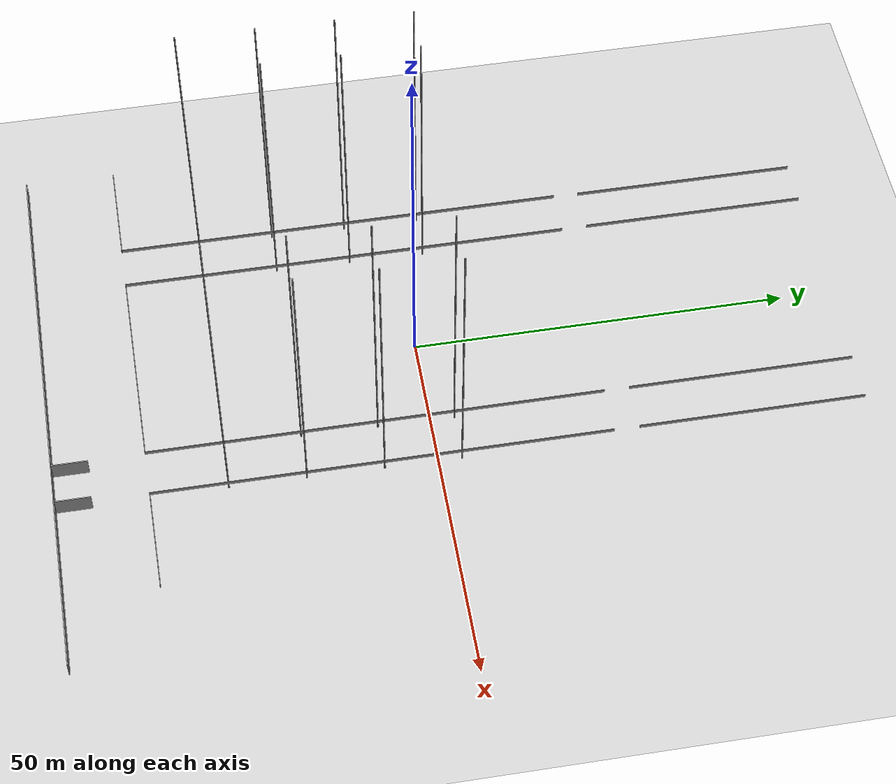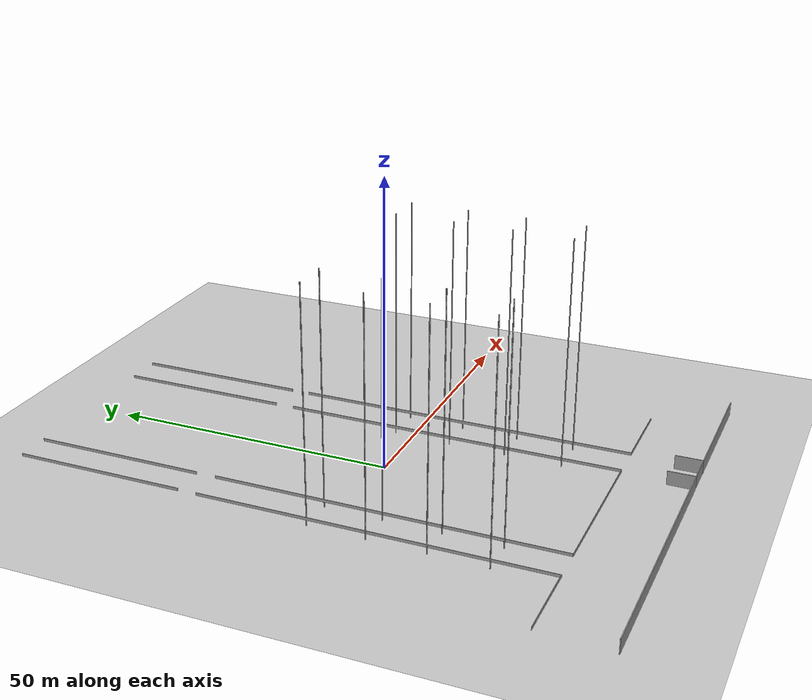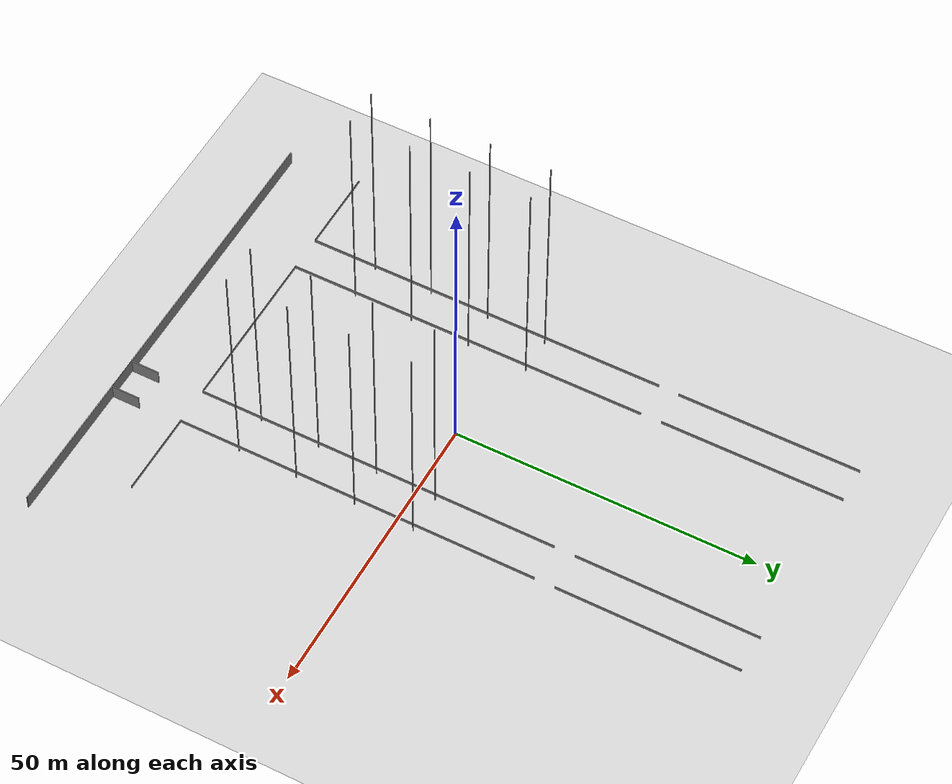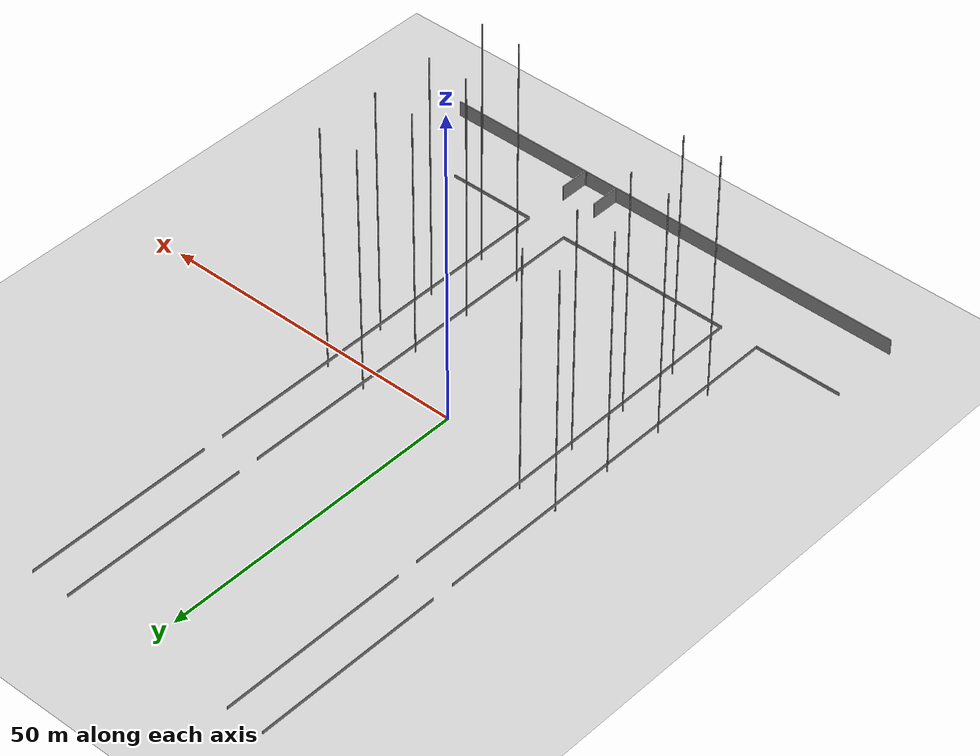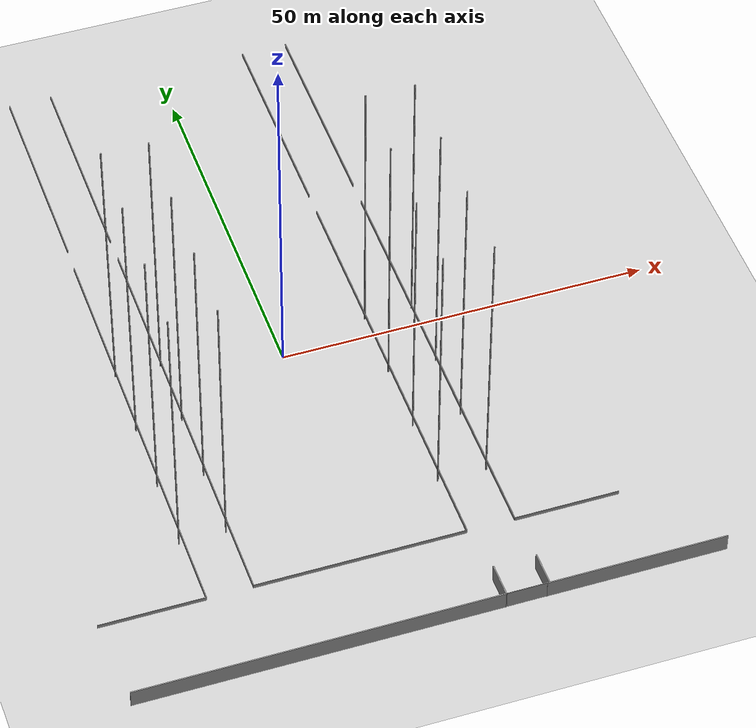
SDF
<sdf version="1.7">
 <world name="default">
  <model name="ground_plane">
   <static>1</static>
   <link name="link">
    <collision name="collision">
     <geometry><plane><normal>0 0 1</normal><size>100 100</size></plane></geometry>
     <surface><friction><ode><mu>100</mu><mu2>50</mu2></ode></friction></surface>
    </collision>
    <visual name="visual">
     <cast_shadows>0</cast_shadows>
     <geometry><plane><normal>0 0 1</normal><size>100 100</size></plane></geometry>
     <material>
      <script><uri>file://media/materials/scripts/gazebo.material</uri><name>Gazebo/Grey</name></script>
     </material>
    </visual>
   </link>
  </model>
  <model name="muchang">
   <pose>-2.7147 -13.263 0 0 -0 0</pose>
   <link name="Wall_110">
    <collision name="Wall_110_Collision">
     <geometry><box><size>24 0.15 2.5</size></box></geometry>
     <pose>0 0 1.25 0 -0 0</pose>
    </collision>
    <visual name="Wall_110_Visual">
     <pose>0 0 1.25 0 -0 0</pose>
     <geometry><box><size>24 0.15 2.5</size></box></geometry>
     <material>
      <script><uri>file://media/materials/scripts/gazebo.material</uri><name>Gazebo/Grey</name></script>
      <ambient>1 1 1 1</ambient>
     </material>
     <meta><layer>0</layer></meta>
    </visual>
    <pose>33.0337 -35.6051 0 0 -0 0</pose>
   </link>
   <link name="Wall_113">
    <collision name="Wall_113_Collision">
     <geometry><box><size>14 0.1 0.5</size></box></geometry>
     <pose>0 0 1.25 0 -0 0</pose>
    </collision>
    <visual name="Wall_113_Visual">
     <pose>0 0 1.25 0 -0 0</pose>
     <geometry><box><size>14 0.1 0.5</size></box></geometry>
     <material>
      <script><uri>file://media/materials/scripts/gazebo.material</uri><name>Gazebo/Grey</name></script>
      <ambient>1 1 1 1</ambient>
     </material>
     <meta><layer>0</layer></meta>
    </visual>
    <pose>-26.0749 -23.6284 0 0 -0 0</pose>
   </link>
   <link name="Wall_114">
    <collision name="Wall_114_Collision">
     <geometry><box><size>60 0.1 0.5</size></box></geometry>
     <pose>0 0 1.25 0 -0 0</pose>
    </collision>
    <visual name="Wall_114_Visual">
     <pose>0 0 1.25 0 -0 0</pose>
     <geometry><box><size>60 0.1 0.5</size></box></geometry>
     <material>
      <script><uri>file://media/materials/scripts/gazebo.material</uri><name>Gazebo/Grey</name></script>
      <ambient>1 1 1 1</ambient>
     </material>
     <meta><layer>0</layer></meta>
    </visual>
    <pose>-19.1369 6.41425 0 0 -0 1.5708</pose>
   </link>
   <link name="Wall_117">
    <collision name="Wall_117_Collision">
     <geometry><box><size>60 0.1 0.5</size></box></geometry>
     <pose>0 0 1.25 0 -0 0</pose>
    </collision>
    <visual name="Wall_117_Visual">
     <pose>0 0 1.25 0 -0 0</pose>
     <geometry><box><size>60 0.1 0.5</size></box></geometry>
     <material>
      <script><uri>file://media/materials/scripts/gazebo.material</uri><name>Gazebo/Grey</name></script>
      <ambient>1 1 1 1</ambient>
     </material>
     <meta><layer>0</layer></meta>
    </visual>
    <pose>-13.0627 6.36549 0 0 0 -1.5708</pose>
   </link>
   <link name="Wall_118">
    <collision name="Wall_118_Collision">
     <geometry><box><size>28 0.1 0.5</size></box></geometry>
     <pose>0 0 1.25 0 -0 0</pose>
    </collision>
    <visual name="Wall_118_Visual">
     <pose>0 0 1.25 0 -0 0</pose>
     <geometry><box><size>28 0.1 0.5</size></box></geometry>
     <material>
      <script><uri>file://media/materials/scripts/gazebo.material</uri><name>Gazebo/Grey</name></script>
      <ambient>1 1 1 1</ambient>
     </material>
     <meta><layer>0</layer></meta>
    </visual>
    <pose>0.861755 -23.6284 0 0 -0 0</pose>
   </link>
   <link name="Wall_119">
    <collision name="Wall_119_Collision">
     <geometry><box><size>60 0.1 0.5</size></box></geometry>
     <pose>0 0 1.25 0 -0 0</pose>
    </collision>
    <visual name="Wall_119_Visual">
     <pose>0 0 1.25 0 -0 0</pose>
     <geometry><box><size>60 0.1 0.5</size></box></geometry>
     <material>
      <script><uri>file://media/materials/scripts/gazebo.material</uri><name>Gazebo/Grey</name></script>
      <ambient>1 1 1 1</ambient>
     </material>
     <meta><layer>0</layer></meta>
    </visual>
    <pose>14.8947 6.3456 0 0 -0 1.5708</pose>
   </link>
   <link name="Wall_125">
    <collision name="Wall_125_Collision">
     <geometry><box><size>60 0.1 0.5</size></box></geometry>
     <pose>0 0 1.25 0 -0 0</pose>
    </collision>
    <visual name="Wall_125_Visual">
     <pose>0 0 1.25 0 -0 0</pose>
     <geometry><box><size>60 0.1 0.5</size></box></geometry>
     <material>
      <script><uri>file://media/materials/scripts/gazebo.material</uri><name>Gazebo/Grey</name></script>
      <ambient>1 1 1 1</ambient>
     </material>
     <meta><layer>0</layer></meta>
    </visual>
    <pose>21.2422 6.345 0 0 0 -1.5708</pose>
   </link>
   <link name="Wall_126">
    <collision name="Wall_126_Collision">
     <geometry><box><size>14 0.1 0.5</size></box></geometry>
     <pose>0 0 1.25 0 -0 0</pose>
    </collision>
    <visual name="Wall_126_Visual">
     <pose>0 0 1.25 0 -0 0</pose>
     <geometry><box><size>14 0.1 0.5</size></box></geometry>
     <material>
      <script><uri>file://media/materials/scripts/gazebo.material</uri><name>Gazebo/Grey</name></script>
      <ambient>1 1 1 1</ambient>
     </material>
     <meta><layer>0</layer></meta>
    </visual>
    <pose>28.2337 -23.6284 0 0 -0 0</pose>
   </link>
   <link name="Wall_128">
    <collision name="Wall_128_Collision">
     <geometry><box><size>30 0.1 0.5</size></box></geometry>
     <pose>0 0 1.25 0 -0 0</pose>
    </collision>
    <visual name="Wall_128_Visual">
     <pose>0 0 1.25 0 -0 0</pose>
     <geometry><box><size>30 0.1 0.5</size></box></geometry>
     <material>
      <script><uri>file://media/materials/scripts/gazebo.material</uri><name>Gazebo/Grey</name></script>
      <ambient>1 1 1 1</ambient>
     </material>
     <meta><layer>0</layer></meta>
    </visual>
    <pose>-19.0369 54.7691 0 0 -0 1.5708</pose>
   </link>
   <link name="Wall_149">
    <collision name="Wall_149_Collision">
     <geometry><box><size>30 0.1 0.5</size></box></geometry>
     <pose>0 0 1.25 0 -0 0</pose>
    </collision>
    <visual name="Wall_149_Visual">
     <pose>0 0 1.25 0 -0 0</pose>
     <geometry><box><size>30 0.1 0.5</size></box></geometry>
     <material>
      <script><uri>file://media/materials/scripts/gazebo.material</uri><name>Gazebo/Grey</name></script>
      <ambient>1 1 1 1</ambient>
     </material>
     <meta><layer>0</layer></meta>
    </visual>
    <pose>-13.1062 54.7691 0 0 -0 1.5708</pose>
   </link>
   <link name="Wall_173">
    <collision name="Wall_173_Collision">
     <geometry><box><size>30 0.1 0.5</size></box></geometry>
     <pose>0 0 1.25 0 -0 0</pose>
    </collision>
    <visual name="Wall_173_Visual">
     <pose>0 0 1.25 0 -0 0</pose>
     <geometry><box><size>30 0.1 0.5</size></box></geometry>
     <material>
      <script><uri>file://media/materials/scripts/gazebo.material</uri><name>Gazebo/Grey</name></script>
      <ambient>1 1 1 1</ambient>
     </material>
     <meta><layer>0</layer></meta>
    </visual>
    <pose>14.9012 54.6691 0 0 -0 1.5708</pose>
   </link>
   <link name="Wall_184">
    <collision name="Wall_184_Collision">
     <geometry><box><size>30 0.1 0.5</size></box></geometry>
     <pose>0 0 1.25 0 -0 0</pose>
    </collision>
    <visual name="Wall_184_Visual">
     <pose>0 0 1.25 0 -0 0</pose>
     <geometry><box><size>30 0.1 0.5</size></box></geometry>
     <material>
      <script><uri>file://media/materials/scripts/gazebo.material</uri><name>Gazebo/Grey</name></script>
      <ambient>1 1 1 1</ambient>
     </material>
     <meta><layer>0</layer></meta>
    </visual>
    <pose>21.2422 54.6691 0 0 -0 1.5708</pose>
   </link>
   <link name="Wall_6">
    <collision name="Wall_6_Collision">
     <geometry><box><size>48 0.15 2.5</size></box></geometry>
     <pose>0 0 1.25 0 -0 0</pose>
    </collision>
    <visual name="Wall_6_Visual">
     <pose>0 0 1.25 0 -0 0</pose>
     <geometry><box><size>48 0.15 2.5</size></box></geometry>
     <material>
      <script><uri>file://media/materials/scripts/gazebo.material</uri><name>Gazebo/Grey</name></script>
      <ambient>1 1 1 1</ambient>
     </material>
     <meta><layer>0</layer></meta>
    </visual>
    <pose>-8.3608 -35.6051 0 0 -0 0</pose>
   </link>
   <link name="Wall_7">
    <collision name="Wall_7_Collision">
     <geometry><box><size>4.75 0.15 2.5</size></box></geometry>
     <pose>0 0 1.25 0 -0 0</pose>
    </collision>
    <visual name="Wall_7_Visual">
     <pose>0 0 1.25 0 -0 0</pose>
     <geometry><box><size>4.75 0.15 2.5</size></box></geometry>
     <material>
      <script><uri>file://media/materials/scripts/gazebo.material</uri><name>Gazebo/Grey</name></script>
      <ambient>1 1 1 1</ambient>
     </material>
     <meta><layer>0</layer></meta>
    </visual>
    <pose>15.6997 -33.2772 -0.088121 0 0 -1.5708</pose>
   </link>
   <link name="Wall_8">
    <collision name="Wall_8_Collision">
     <geometry><box><size>5.5 0.1 2.5</size></box></geometry>
     <pose>0 0 1.25 0 -0 0</pose>
    </collision>
    <visual name="Wall_8_Visual">
     <pose>0 0 1.25 0 -0 0</pose>
     <geometry><box><size>5.5 0.1 2.5</size></box></geometry>
     <material>
      <script><uri>file://media/materials/scripts/gazebo.material</uri><name>Gazebo/Grey</name></script>
      <ambient>1 1 1 1</ambient>
     </material>
     <meta><layer>0</layer></meta>
    </visual>
    <pose>18.5043 -35.6051 0 0 -0 0</pose>
   </link>
   <link name="Wall_9">
    <collision name="Wall_9_Collision">
     <geometry><box><size>4.75 0.15 2.5</size></box></geometry>
     <pose>0 0 1.25 0 -0 0</pose>
    </collision>
    <visual name="Wall_9_Visual">
     <pose>0 0 1.25 0 -0 0</pose>
     <geometry><box><size>4.75 0.15 2.5</size></box></geometry>
     <material>
      <script><uri>file://media/materials/scripts/gazebo.material</uri><name>Gazebo/Grey</name></script>
      <ambient>1 1 1 1</ambient>
     </material>
     <meta><layer>0</layer></meta>
    </visual>
    <pose>21.3422 -33.2718 0 0 -0 1.5708</pose>
   </link>
   <static>1</static>
  </model>
  <model name="muchang_s">
   <link name="link_0">
    <inertial>
     <mass>1</mass>
     <inertia><ixx>0.145833</ixx><ixy>0</ixy><ixz>0</ixz><iyy>0.145833</iyy><iyz>0</iyz><izz>0.125</izz></inertia>
    </inertial>
    <pose>-3.71609 27.7468 1.31427 0 -0 0</pose>
    <visual name="visual">
     <geometry><cylinder><radius>0.1</radius><length>40</length></cylinder></geometry>
     <material>
      <lighting>1</lighting>
      <script><uri>file://media/materials/scripts/gazebo.material</uri><name>Gazebo/Grey</name></script>
      <shader type="pixel"><normal_map>__default__</normal_map></shader>
      <ambient>0.3 0.3 0.3 1</ambient>
      <diffuse>0.7 0.7 0.7 1</diffuse>
      <specular>0.01 0.01 0.01 1</specular>
      <emissive>0 0 0 1</emissive>
     </material>
    </visual>
    <collision name="collision">
     <geometry><cylinder><radius>0.1</radius><length>40</length></cylinder></geometry>
     <surface>
      <friction>
       <ode><mu>1</mu><mu2>1</mu2><fdir1>0 0 0</fdir1><slip1>0</slip1><slip2>0</slip2></ode>
       <torsional>
        <coefficient>1</coefficient>
        <patch_radius>0</patch_radius>
        <surface_radius>0</surface_radius>
        <use_patch_radius>1</use_patch_radius>
        <ode><slip>0</slip></ode>
       </torsional>
      </friction>
      <bounce><restitution_coefficient>0</restitution_coefficient><threshold>1e+06</threshold></bounce>
      <contact>
       <collide_without_contact>0</collide_without_contact>
       <collide_without_contact_bitmask>1</collide_without_contact_bitmask>
       <collide_bitmask>1</collide_bitmask>
       <ode>
        <soft_cfm>0</soft_cfm>
        <soft_erp>0.2</soft_erp>
        <kp>1e+13</kp>
        <kd>1</kd>
        <max_vel>0.01</max_vel>
        <min_depth>0</min_depth>
       </ode>
       <bullet>
        <split_impulse>1</split_impulse>
        <split_impulse_penetration_threshold>-0.01</split_impulse_penetration_threshold>
        <soft_cfm>0</soft_cfm>
        <soft_erp>0.2</soft_erp>
        <kp>1e+13</kp>
        <kd>1</kd>
       </bullet>
      </contact>
     </surface>
    </collision>
   </link>
   <link name="link_0_clone">
    <inertial>
     <mass>1</mass>
     <inertia><ixx>0.145833</ixx><ixy>0</ixy><ixz>0</ixz><iyy>0.145833</iyy><iyz>0</iyz><izz>0.125</izz></inertia>
    </inertial>
    <pose>-3.71609 17.7468 1.31427 0 -0 0</pose>
    <visual name="visual">
     <geometry><cylinder><radius>0.1</radius><length>40</length></cylinder></geometry>
     <material>
      <lighting>1</lighting>
      <script><uri>file://media/materials/scripts/gazebo.material</uri><name>Gazebo/Grey</name></script>
      <shader type="pixel"><normal_map>__default__</normal_map></shader>
      <ambient>0.3 0.3 0.3 1</ambient>
      <diffuse>0.7 0.7 0.7 1</diffuse>
      <specular>0.01 0.01 0.01 1</specular>
      <emissive>0 0 0 1</emissive>
     </material>
    </visual>
    <collision name="collision">
     <geometry><cylinder><radius>0.1</radius><length>40</length></cylinder></geometry>
     <surface>
      <friction>
       <ode><mu>1</mu><mu2>1</mu2><fdir1>0 0 0</fdir1><slip1>0</slip1><slip2>0</slip2></ode>
       <torsional>
        <coefficient>1</coefficient>
        <patch_radius>0</patch_radius>
        <surface_radius>0</surface_radius>
        <use_patch_radius>1</use_patch_radius>
        <ode><slip>0</slip></ode>
       </torsional>
      </friction>
      <bounce><restitution_coefficient>0</restitution_coefficient><threshold>1e+06</threshold></bounce>
      <contact>
       <collide_without_contact>0</collide_without_contact>
       <collide_without_contact_bitmask>1</collide_without_contact_bitmask>
       <collide_bitmask>1</collide_bitmask>
       <ode>
        <soft_cfm>0</soft_cfm>
        <soft_erp>0.2</soft_erp>
        <kp>1e+13</kp>
        <kd>1</kd>
        <max_vel>0.01</max_vel>
        <min_depth>0</min_depth>
       </ode>
       <bullet>
        <split_impulse>1</split_impulse>
        <split_impulse_penetration_threshold>-0.01</split_impulse_penetration_threshold>
        <soft_cfm>0</soft_cfm>
        <soft_erp>0.2</soft_erp>
        <kp>1e+13</kp>
        <kd>1</kd>
       </bullet>
      </contact>
     </surface>
    </collision>
   </link>
   <link name="link_0_clone_clone">
    <inertial>
     <mass>1</mass>
     <inertia><ixx>0.145833</ixx><ixy>0</ixy><ixz>0</ixz><iyy>0.145833</iyy><iyz>0</iyz><izz>0.125</izz></inertia>
    </inertial>
    <pose>-3.71609 37.7468 1.31427 0 -0 0</pose>
    <visual name="visual">
     <geometry><cylinder><radius>0.1</radius><length>40</length></cylinder></geometry>
     <material>
      <lighting>1</lighting>
      <script><uri>file://media/materials/scripts/gazebo.material</uri><name>Gazebo/Grey</name></script>
      <shader type="pixel"><normal_map>__default__</normal_map></shader>
      <ambient>0.3 0.3 0.3 1</ambient>
      <diffuse>0.7 0.7 0.7 1</diffuse>
      <specular>0.01 0.01 0.01 1</specular>
      <emissive>0 0 0 1</emissive>
     </material>
    </visual>
    <collision name="collision">
     <geometry><cylinder><radius>0.1</radius><length>40</length></cylinder></geometry>
     <surface>
      <friction>
       <ode><mu>1</mu><mu2>1</mu2><fdir1>0 0 0</fdir1><slip1>0</slip1><slip2>0</slip2></ode>
       <torsional>
        <coefficient>1</coefficient>
        <patch_radius>0</patch_radius>
        <surface_radius>0</surface_radius>
        <use_patch_radius>1</use_patch_radius>
        <ode><slip>0</slip></ode>
       </torsional>
      </friction>
      <bounce><restitution_coefficient>0</restitution_coefficient><threshold>1e+06</threshold></bounce>
      <contact>
       <collide_without_contact>0</collide_without_contact>
       <collide_without_contact_bitmask>1</collide_without_contact_bitmask>
       <collide_bitmask>1</collide_bitmask>
       <ode>
        <soft_cfm>0</soft_cfm>
        <soft_erp>0.2</soft_erp>
        <kp>1e+13</kp>
        <kd>1</kd>
        <max_vel>0.01</max_vel>
        <min_depth>0</min_depth>
       </ode>
       <bullet>
        <split_impulse>1</split_impulse>
        <split_impulse_penetration_threshold>-0.01</split_impulse_penetration_threshold>
        <soft_cfm>0</soft_cfm>
        <soft_erp>0.2</soft_erp>
        <kp>1e+13</kp>
        <kd>1</kd>
       </bullet>
      </contact>
     </surface>
    </collision>
   </link>
   <link name="link_0_clone_clone_0">
    <inertial>
     <mass>1</mass>
     <inertia><ixx>0.145833</ixx><ixy>0</ixy><ixz>0</ixz><iyy>0.145833</iyy><iyz>0</iyz><izz>0.125</izz></inertia>
    </inertial>
    <pose>2.77174 17.7468 1.31427 0 -0 0</pose>
    <visual name="visual">
     <geometry><cylinder><radius>0.1</radius><length>40</length></cylinder></geometry>
     <material>
      <lighting>1</lighting>
      <script><uri>file://media/materials/scripts/gazebo.material</uri><name>Gazebo/Grey</name></script>
      <shader type="pixel"><normal_map>__default__</normal_map></shader>
      <ambient>0.3 0.3 0.3 1</ambient>
      <diffuse>0.7 0.7 0.7 1</diffuse>
      <specular>0.01 0.01 0.01 1</specular>
      <emissive>0 0 0 1</emissive>
     </material>
    </visual>
    <collision name="collision">
     <geometry><cylinder><radius>0.1</radius><length>40</length></cylinder></geometry>
     <surface>
      <friction>
       <ode><mu>1</mu><mu2>1</mu2><fdir1>0 0 0</fdir1><slip1>0</slip1><slip2>0</slip2></ode>
       <torsional>
        <coefficient>1</coefficient>
        <patch_radius>0</patch_radius>
        <surface_radius>0</surface_radius>
        <use_patch_radius>1</use_patch_radius>
        <ode><slip>0</slip></ode>
       </torsional>
      </friction>
      <bounce><restitution_coefficient>0</restitution_coefficient><threshold>1e+06</threshold></bounce>
      <contact>
       <collide_without_contact>0</collide_without_contact>
       <collide_without_contact_bitmask>1</collide_without_contact_bitmask>
       <collide_bitmask>1</collide_bitmask>
       <ode>
        <soft_cfm>0</soft_cfm>
        <soft_erp>0.2</soft_erp>
        <kp>1e+13</kp>
        <kd>1</kd>
        <max_vel>0.01</max_vel>
        <min_depth>0</min_depth>
       </ode>
       <bullet>
        <split_impulse>1</split_impulse>
        <split_impulse_penetration_threshold>-0.01</split_impulse_penetration_threshold>
        <soft_cfm>0</soft_cfm>
        <soft_erp>0.2</soft_erp>
        <kp>1e+13</kp>
        <kd>1</kd>
       </bullet>
      </contact>
     </surface>
    </collision>
   </link>
   <link name="link_0_clone_clone_0_clone">
    <inertial>
     <mass>1</mass>
     <inertia><ixx>0.145833</ixx><ixy>0</ixy><ixz>0</ixz><iyy>0.145833</iyy><iyz>0</iyz><izz>0.125</izz></inertia>
    </inertial>
    <pose>2.77174 27.7468 1.31427 0 -0 0</pose>
    <visual name="visual">
     <geometry><cylinder><radius>0.1</radius><length>40</length></cylinder></geometry>
     <material>
      <lighting>1</lighting>
      <script><uri>file://media/materials/scripts/gazebo.material</uri><name>Gazebo/Grey</name></script>
      <shader type="pixel"><normal_map>__default__</normal_map></shader>
      <ambient>0.3 0.3 0.3 1</ambient>
      <diffuse>0.7 0.7 0.7 1</diffuse>
      <specular>0.01 0.01 0.01 1</specular>
      <emissive>0 0 0 1</emissive>
     </material>
    </visual>
    <collision name="collision">
     <geometry><cylinder><radius>0.1</radius><length>40</length></cylinder></geometry>
     <surface>
      <friction>
       <ode><mu>1</mu><mu2>1</mu2><fdir1>0 0 0</fdir1><slip1>0</slip1><slip2>0</slip2></ode>
       <torsional>
        <coefficient>1</coefficient>
        <patch_radius>0</patch_radius>
        <surface_radius>0</surface_radius>
        <use_patch_radius>1</use_patch_radius>
        <ode><slip>0</slip></ode>
       </torsional>
      </friction>
      <bounce><restitution_coefficient>0</restitution_coefficient><threshold>1e+06</threshold></bounce>
      <contact>
       <collide_without_contact>0</collide_without_contact>
       <collide_without_contact_bitmask>1</collide_without_contact_bitmask>
       <collide_bitmask>1</collide_bitmask>
       <ode>
        <soft_cfm>0</soft_cfm>
        <soft_erp>0.2</soft_erp>
        <kp>1e+13</kp>
        <kd>1</kd>
        <max_vel>0.01</max_vel>
        <min_depth>0</min_depth>
       </ode>
       <bullet>
        <split_impulse>1</split_impulse>
        <split_impulse_penetration_threshold>-0.01</split_impulse_penetration_threshold>
        <soft_cfm>0</soft_cfm>
        <soft_erp>0.2</soft_erp>
        <kp>1e+13</kp>
        <kd>1</kd>
       </bullet>
      </contact>
     </surface>
    </collision>
   </link>
   <link name="link_0_clone_clone_0_clone_1">
    <inertial>
     <mass>1</mass>
     <inertia><ixx>0.145833</ixx><ixy>0</ixy><ixz>0</ixz><iyy>0.145833</iyy><iyz>0</iyz><izz>0.125</izz></inertia>
    </inertial>
    <pose>2.77174 37.7468 1.31427 0 -0 0</pose>
    <visual name="visual">
     <geometry><cylinder><radius>0.1</radius><length>40</length></cylinder></geometry>
     <material>
      <lighting>1</lighting>
      <script><uri>file://media/materials/scripts/gazebo.material</uri><name>Gazebo/Grey</name></script>
      <shader type="pixel"><normal_map>__default__</normal_map></shader>
      <ambient>0.3 0.3 0.3 1</ambient>
      <diffuse>0.7 0.7 0.7 1</diffuse>
      <specular>0.01 0.01 0.01 1</specular>
      <emissive>0 0 0 1</emissive>
     </material>
    </visual>
    <collision name="collision">
     <geometry><cylinder><radius>0.1</radius><length>40</length></cylinder></geometry>
     <surface>
      <friction>
       <ode><mu>1</mu><mu2>1</mu2><fdir1>0 0 0</fdir1><slip1>0</slip1><slip2>0</slip2></ode>
       <torsional>
        <coefficient>1</coefficient>
        <patch_radius>0</patch_radius>
        <surface_radius>0</surface_radius>
        <use_patch_radius>1</use_patch_radius>
        <ode><slip>0</slip></ode>
       </torsional>
      </friction>
      <bounce><restitution_coefficient>0</restitution_coefficient><threshold>1e+06</threshold></bounce>
      <contact>
       <collide_without_contact>0</collide_without_contact>
       <collide_without_contact_bitmask>1</collide_without_contact_bitmask>
       <collide_bitmask>1</collide_bitmask>
       <ode>
        <soft_cfm>0</soft_cfm>
        <soft_erp>0.2</soft_erp>
        <kp>1e+13</kp>
        <kd>1</kd>
        <max_vel>0.01</max_vel>
        <min_depth>0</min_depth>
       </ode>
       <bullet>
        <split_impulse>1</split_impulse>
        <split_impulse_penetration_threshold>-0.01</split_impulse_penetration_threshold>
        <soft_cfm>0</soft_cfm>
        <soft_erp>0.2</soft_erp>
        <kp>1e+13</kp>
        <kd>1</kd>
       </bullet>
      </contact>
     </surface>
    </collision>
   </link>
   <link name="link_0_clone_clone_0_clone_2">
    <inertial>
     <mass>1</mass>
     <inertia><ixx>0.145833</ixx><ixy>0</ixy><ixz>0</ixz><iyy>0.145833</iyy><iyz>0</iyz><izz>0.125</izz></inertia>
    </inertial>
    <pose>2.77174 47.7468 1.31427 0 -0 0</pose>
    <visual name="visual">
     <geometry><cylinder><radius>0.1</radius><length>40</length></cylinder></geometry>
     <material>
      <lighting>1</lighting>
      <script><uri>file://media/materials/scripts/gazebo.material</uri><name>Gazebo/Grey</name></script>
      <shader type="pixel"><normal_map>__default__</normal_map></shader>
      <ambient>0.3 0.3 0.3 1</ambient>
      <diffuse>0.7 0.7 0.7 1</diffuse>
      <specular>0.01 0.01 0.01 1</specular>
      <emissive>0 0 0 1</emissive>
     </material>
    </visual>
    <collision name="collision">
     <geometry><cylinder><radius>0.1</radius><length>40</length></cylinder></geometry>
     <surface>
      <friction>
       <ode><mu>1</mu><mu2>1</mu2><fdir1>0 0 0</fdir1><slip1>0</slip1><slip2>0</slip2></ode>
       <torsional>
        <coefficient>1</coefficient>
        <patch_radius>0</patch_radius>
        <surface_radius>0</surface_radius>
        <use_patch_radius>1</use_patch_radius>
        <ode><slip>0</slip></ode>
       </torsional>
      </friction>
      <bounce><restitution_coefficient>0</restitution_coefficient><threshold>1e+06</threshold></bounce>
      <contact>
       <collide_without_contact>0</collide_without_contact>
       <collide_without_contact_bitmask>1</collide_without_contact_bitmask>
       <collide_bitmask>1</collide_bitmask>
       <ode>
        <soft_cfm>0</soft_cfm>
        <soft_erp>0.2</soft_erp>
        <kp>1e+13</kp>
        <kd>1</kd>
        <max_vel>0.01</max_vel>
        <min_depth>0</min_depth>
       </ode>
       <bullet>
        <split_impulse>1</split_impulse>
        <split_impulse_penetration_threshold>-0.01</split_impulse_penetration_threshold>
        <soft_cfm>0</soft_cfm>
        <soft_erp>0.2</soft_erp>
        <kp>1e+13</kp>
        <kd>1</kd>
       </bullet>
      </contact>
     </surface>
    </collision>
   </link>
   <link name="link_0_clone_clone_1">
    <inertial>
     <mass>1</mass>
     <inertia><ixx>0.145833</ixx><ixy>0</ixy><ixz>0</ixz><iyy>0.145833</iyy><iyz>0</iyz><izz>0.125</izz></inertia>
    </inertial>
    <pose>-37.8115 17.7468 1.31427 0 -0 0</pose>
    <visual name="visual">
     <geometry><cylinder><radius>0.1</radius><length>40</length></cylinder></geometry>
     <material>
      <lighting>1</lighting>
      <script><uri>file://media/materials/scripts/gazebo.material</uri><name>Gazebo/Grey</name></script>
      <shader type="pixel"><normal_map>__default__</normal_map></shader>
      <ambient>0.3 0.3 0.3 1</ambient>
      <diffuse>0.7 0.7 0.7 1</diffuse>
      <specular>0.01 0.01 0.01 1</specular>
      <emissive>0 0 0 1</emissive>
     </material>
    </visual>
    <collision name="collision">
     <geometry><cylinder><radius>0.1</radius><length>40</length></cylinder></geometry>
     <surface>
      <friction>
       <ode><mu>1</mu><mu2>1</mu2><fdir1>0 0 0</fdir1><slip1>0</slip1><slip2>0</slip2></ode>
       <torsional>
        <coefficient>1</coefficient>
        <patch_radius>0</patch_radius>
        <surface_radius>0</surface_radius>
        <use_patch_radius>1</use_patch_radius>
        <ode><slip>0</slip></ode>
       </torsional>
      </friction>
      <bounce><restitution_coefficient>0</restitution_coefficient><threshold>1e+06</threshold></bounce>
      <contact>
       <collide_without_contact>0</collide_without_contact>
       <collide_without_contact_bitmask>1</collide_without_contact_bitmask>
       <collide_bitmask>1</collide_bitmask>
       <ode>
        <soft_cfm>0</soft_cfm>
        <soft_erp>0.2</soft_erp>
        <kp>1e+13</kp>
        <kd>1</kd>
        <max_vel>0.01</max_vel>
        <min_depth>0</min_depth>
       </ode>
       <bullet>
        <split_impulse>1</split_impulse>
        <split_impulse_penetration_threshold>-0.01</split_impulse_penetration_threshold>
        <soft_cfm>0</soft_cfm>
        <soft_erp>0.2</soft_erp>
        <kp>1e+13</kp>
        <kd>1</kd>
       </bullet>
      </contact>
     </surface>
    </collision>
   </link>
   <link name="link_0_clone_clone_1_clone">
    <inertial>
     <mass>1</mass>
     <inertia><ixx>0.145833</ixx><ixy>0</ixy><ixz>0</ixz><iyy>0.145833</iyy><iyz>0</iyz><izz>0.125</izz></inertia>
    </inertial>
    <pose>-31.6959 17.7468 1.31427 0 -0 0</pose>
    <visual name="visual">
     <geometry><cylinder><radius>0.1</radius><length>40</length></cylinder></geometry>
     <material>
      <lighting>1</lighting>
      <script><uri>file://media/materials/scripts/gazebo.material</uri><name>Gazebo/Grey</name></script>
      <shader type="pixel"><normal_map>__default__</normal_map></shader>
      <ambient>0.3 0.3 0.3 1</ambient>
      <diffuse>0.7 0.7 0.7 1</diffuse>
      <specular>0.01 0.01 0.01 1</specular>
      <emissive>0 0 0 1</emissive>
     </material>
    </visual>
    <collision name="collision">
     <geometry><cylinder><radius>0.1</radius><length>40</length></cylinder></geometry>
     <surface>
      <friction>
       <ode><mu>1</mu><mu2>1</mu2><fdir1>0 0 0</fdir1><slip1>0</slip1><slip2>0</slip2></ode>
       <torsional>
        <coefficient>1</coefficient>
        <patch_radius>0</patch_radius>
        <surface_radius>0</surface_radius>
        <use_patch_radius>1</use_patch_radius>
        <ode><slip>0</slip></ode>
       </torsional>
      </friction>
      <bounce><restitution_coefficient>0</restitution_coefficient><threshold>1e+06</threshold></bounce>
      <contact>
       <collide_without_contact>0</collide_without_contact>
       <collide_without_contact_bitmask>1</collide_without_contact_bitmask>
       <collide_bitmask>1</collide_bitmask>
       <ode>
        <soft_cfm>0</soft_cfm>
        <soft_erp>0.2</soft_erp>
        <kp>1e+13</kp>
        <kd>1</kd>
        <max_vel>0.01</max_vel>
        <min_depth>0</min_depth>
       </ode>
       <bullet>
        <split_impulse>1</split_impulse>
        <split_impulse_penetration_threshold>-0.01</split_impulse_penetration_threshold>
        <soft_cfm>0</soft_cfm>
        <soft_erp>0.2</soft_erp>
        <kp>1e+13</kp>
        <kd>1</kd>
       </bullet>
      </contact>
     </surface>
    </collision>
   </link>
   <link name="link_0_clone_clone_1_clone_0">
    <inertial>
     <mass>1</mass>
     <inertia><ixx>0.145833</ixx><ixy>0</ixy><ixz>0</ixz><iyy>0.145833</iyy><iyz>0</iyz><izz>0.125</izz></inertia>
    </inertial>
    <pose>-31.6959 27.7468 1.31427 0 -0 0</pose>
    <visual name="visual">
     <geometry><cylinder><radius>0.1</radius><length>40</length></cylinder></geometry>
     <material>
      <lighting>1</lighting>
      <script><uri>file://media/materials/scripts/gazebo.material</uri><name>Gazebo/Grey</name></script>
      <shader type="pixel"><normal_map>__default__</normal_map></shader>
      <ambient>0.3 0.3 0.3 1</ambient>
      <diffuse>0.7 0.7 0.7 1</diffuse>
      <specular>0.01 0.01 0.01 1</specular>
      <emissive>0 0 0 1</emissive>
     </material>
    </visual>
    <collision name="collision">
     <geometry><cylinder><radius>0.1</radius><length>40</length></cylinder></geometry>
     <surface>
      <friction>
       <ode><mu>1</mu><mu2>1</mu2><fdir1>0 0 0</fdir1><slip1>0</slip1><slip2>0</slip2></ode>
       <torsional>
        <coefficient>1</coefficient>
        <patch_radius>0</patch_radius>
        <surface_radius>0</surface_radius>
        <use_patch_radius>1</use_patch_radius>
        <ode><slip>0</slip></ode>
       </torsional>
      </friction>
      <bounce><restitution_coefficient>0</restitution_coefficient><threshold>1e+06</threshold></bounce>
      <contact>
       <collide_without_contact>0</collide_without_contact>
       <collide_without_contact_bitmask>1</collide_without_contact_bitmask>
       <collide_bitmask>1</collide_bitmask>
       <ode>
        <soft_cfm>0</soft_cfm>
        <soft_erp>0.2</soft_erp>
        <kp>1e+13</kp>
        <kd>1</kd>
        <max_vel>0.01</max_vel>
        <min_depth>0</min_depth>
       </ode>
       <bullet>
        <split_impulse>1</split_impulse>
        <split_impulse_penetration_threshold>-0.01</split_impulse_penetration_threshold>
        <soft_cfm>0</soft_cfm>
        <soft_erp>0.2</soft_erp>
        <kp>1e+13</kp>
        <kd>1</kd>
       </bullet>
      </contact>
     </surface>
    </collision>
   </link>
   <link name="link_0_clone_clone_1_clone_1">
    <inertial>
     <mass>1</mass>
     <inertia><ixx>0.145833</ixx><ixy>0</ixy><ixz>0</ixz><iyy>0.145833</iyy><iyz>0</iyz><izz>0.125</izz></inertia>
    </inertial>
    <pose>-31.6959 37.7468 1.31427 0 -0 0</pose>
    <visual name="visual">
     <geometry><cylinder><radius>0.1</radius><length>40</length></cylinder></geometry>
     <material>
      <lighting>1</lighting>
      <script><uri>file://media/materials/scripts/gazebo.material</uri><name>Gazebo/Grey</name></script>
      <shader type="pixel"><normal_map>__default__</normal_map></shader>
      <ambient>0.3 0.3 0.3 1</ambient>
      <diffuse>0.7 0.7 0.7 1</diffuse>
      <specular>0.01 0.01 0.01 1</specular>
      <emissive>0 0 0 1</emissive>
     </material>
    </visual>
    <collision name="collision">
     <geometry><cylinder><radius>0.1</radius><length>40</length></cylinder></geometry>
     <surface>
      <friction>
       <ode><mu>1</mu><mu2>1</mu2><fdir1>0 0 0</fdir1><slip1>0</slip1><slip2>0</slip2></ode>
       <torsional>
        <coefficient>1</coefficient>
        <patch_radius>0</patch_radius>
        <surface_radius>0</surface_radius>
        <use_patch_radius>1</use_patch_radius>
        <ode><slip>0</slip></ode>
       </torsional>
      </friction>
      <bounce><restitution_coefficient>0</restitution_coefficient><threshold>1e+06</threshold></bounce>
      <contact>
       <collide_without_contact>0</collide_without_contact>
       <collide_without_contact_bitmask>1</collide_without_contact_bitmask>
       <collide_bitmask>1</collide_bitmask>
       <ode>
        <soft_cfm>0</soft_cfm>
        <soft_erp>0.2</soft_erp>
        <kp>1e+13</kp>
        <kd>1</kd>
        <max_vel>0.01</max_vel>
        <min_depth>0</min_depth>
       </ode>
       <bullet>
        <split_impulse>1</split_impulse>
        <split_impulse_penetration_threshold>-0.01</split_impulse_penetration_threshold>
        <soft_cfm>0</soft_cfm>
        <soft_erp>0.2</soft_erp>
        <kp>1e+13</kp>
        <kd>1</kd>
       </bullet>
      </contact>
     </surface>
    </collision>
   </link>
   <link name="link_0_clone_clone_1_clone_2">
    <inertial>
     <mass>1</mass>
     <inertia><ixx>0.145833</ixx><ixy>0</ixy><ixz>0</ixz><iyy>0.145833</iyy><iyz>0</iyz><izz>0.125</izz></inertia>
    </inertial>
    <pose>-31.6959 47.7468 1.31427 0 -0 0</pose>
    <visual name="visual">
     <geometry><cylinder><radius>0.1</radius><length>40</length></cylinder></geometry>
     <material>
      <lighting>1</lighting>
      <script><uri>file://media/materials/scripts/gazebo.material</uri><name>Gazebo/Grey</name></script>
      <shader type="pixel"><normal_map>__default__</normal_map></shader>
      <ambient>0.3 0.3 0.3 1</ambient>
      <diffuse>0.7 0.7 0.7 1</diffuse>
      <specular>0.01 0.01 0.01 1</specular>
      <emissive>0 0 0 1</emissive>
     </material>
    </visual>
    <collision name="collision">
     <geometry><cylinder><radius>0.1</radius><length>40</length></cylinder></geometry>
     <surface>
      <friction>
       <ode><mu>1</mu><mu2>1</mu2><fdir1>0 0 0</fdir1><slip1>0</slip1><slip2>0</slip2></ode>
       <torsional>
        <coefficient>1</coefficient>
        <patch_radius>0</patch_radius>
        <surface_radius>0</surface_radius>
        <use_patch_radius>1</use_patch_radius>
        <ode><slip>0</slip></ode>
       </torsional>
      </friction>
      <bounce><restitution_coefficient>0</restitution_coefficient><threshold>1e+06</threshold></bounce>
      <contact>
       <collide_without_contact>0</collide_without_contact>
       <collide_without_contact_bitmask>1</collide_without_contact_bitmask>
       <collide_bitmask>1</collide_bitmask>
       <ode>
        <soft_cfm>0</soft_cfm>
        <soft_erp>0.2</soft_erp>
        <kp>1e+13</kp>
        <kd>1</kd>
        <max_vel>0.01</max_vel>
        <min_depth>0</min_depth>
       </ode>
       <bullet>
        <split_impulse>1</split_impulse>
        <split_impulse_penetration_threshold>-0.01</split_impulse_penetration_threshold>
        <soft_cfm>0</soft_cfm>
        <soft_erp>0.2</soft_erp>
        <kp>1e+13</kp>
        <kd>1</kd>
       </bullet>
      </contact>
     </surface>
    </collision>
   </link>
   <link name="link_0_clone_clone_2">
    <inertial>
     <mass>1</mass>
     <inertia><ixx>0.145833</ixx><ixy>0</ixy><ixz>0</ixz><iyy>0.145833</iyy><iyz>0</iyz><izz>0.125</izz></inertia>
    </inertial>
    <pose>-37.8115 27.7468 1.31427 0 -0 0</pose>
    <visual name="visual">
     <geometry><cylinder><radius>0.1</radius><length>40</length></cylinder></geometry>
     <material>
      <lighting>1</lighting>
      <script><uri>file://media/materials/scripts/gazebo.material</uri><name>Gazebo/Grey</name></script>
      <shader type="pixel"><normal_map>__default__</normal_map></shader>
      <ambient>0.3 0.3 0.3 1</ambient>
      <diffuse>0.7 0.7 0.7 1</diffuse>
      <specular>0.01 0.01 0.01 1</specular>
      <emissive>0 0 0 1</emissive>
     </material>
    </visual>
    <collision name="collision">
     <geometry><cylinder><radius>0.1</radius><length>40</length></cylinder></geometry>
     <surface>
      <friction>
       <ode><mu>1</mu><mu2>1</mu2><fdir1>0 0 0</fdir1><slip1>0</slip1><slip2>0</slip2></ode>
       <torsional>
        <coefficient>1</coefficient>
        <patch_radius>0</patch_radius>
        <surface_radius>0</surface_radius>
        <use_patch_radius>1</use_patch_radius>
        <ode><slip>0</slip></ode>
       </torsional>
      </friction>
      <bounce><restitution_coefficient>0</restitution_coefficient><threshold>1e+06</threshold></bounce>
      <contact>
       <collide_without_contact>0</collide_without_contact>
       <collide_without_contact_bitmask>1</collide_without_contact_bitmask>
       <collide_bitmask>1</collide_bitmask>
       <ode>
        <soft_cfm>0</soft_cfm>
        <soft_erp>0.2</soft_erp>
        <kp>1e+13</kp>
        <kd>1</kd>
        <max_vel>0.01</max_vel>
        <min_depth>0</min_depth>
       </ode>
       <bullet>
        <split_impulse>1</split_impulse>
        <split_impulse_penetration_threshold>-0.01</split_impulse_penetration_threshold>
        <soft_cfm>0</soft_cfm>
        <soft_erp>0.2</soft_erp>
        <kp>1e+13</kp>
        <kd>1</kd>
       </bullet>
      </contact>
     </surface>
    </collision>
   </link>
   <link name="link_0_clone_clone_3">
    <inertial>
     <mass>1</mass>
     <inertia><ixx>0.145833</ixx><ixy>0</ixy><ixz>0</ixz><iyy>0.145833</iyy><iyz>0</iyz><izz>0.125</izz></inertia>
    </inertial>
    <pose>-37.8115 37.7468 1.31427 0 -0 0</pose>
    <visual name="visual">
     <geometry><cylinder><radius>0.1</radius><length>40</length></cylinder></geometry>
     <material>
      <lighting>1</lighting>
      <script><uri>file://media/materials/scripts/gazebo.material</uri><name>Gazebo/Grey</name></script>
      <shader type="pixel"><normal_map>__default__</normal_map></shader>
      <ambient>0.3 0.3 0.3 1</ambient>
      <diffuse>0.7 0.7 0.7 1</diffuse>
      <specular>0.01 0.01 0.01 1</specular>
      <emissive>0 0 0 1</emissive>
     </material>
    </visual>
    <collision name="collision">
     <geometry><cylinder><radius>0.1</radius><length>40</length></cylinder></geometry>
     <surface>
      <friction>
       <ode><mu>1</mu><mu2>1</mu2><fdir1>0 0 0</fdir1><slip1>0</slip1><slip2>0</slip2></ode>
       <torsional>
        <coefficient>1</coefficient>
        <patch_radius>0</patch_radius>
        <surface_radius>0</surface_radius>
        <use_patch_radius>1</use_patch_radius>
        <ode><slip>0</slip></ode>
       </torsional>
      </friction>
      <bounce><restitution_coefficient>0</restitution_coefficient><threshold>1e+06</threshold></bounce>
      <contact>
       <collide_without_contact>0</collide_without_contact>
       <collide_without_contact_bitmask>1</collide_without_contact_bitmask>
       <collide_bitmask>1</collide_bitmask>
       <ode>
        <soft_cfm>0</soft_cfm>
        <soft_erp>0.2</soft_erp>
        <kp>1e+13</kp>
        <kd>1</kd>
        <max_vel>0.01</max_vel>
        <min_depth>0</min_depth>
       </ode>
       <bullet>
        <split_impulse>1</split_impulse>
        <split_impulse_penetration_threshold>-0.01</split_impulse_penetration_threshold>
        <soft_cfm>0</soft_cfm>
        <soft_erp>0.2</soft_erp>
        <kp>1e+13</kp>
        <kd>1</kd>
       </bullet>
      </contact>
     </surface>
    </collision>
   </link>
   <link name="link_0_clone_clone_4">
    <inertial>
     <mass>1</mass>
     <inertia><ixx>0.145833</ixx><ixy>0</ixy><ixz>0</ixz><iyy>0.145833</iyy><iyz>0</iyz><izz>0.125</izz></inertia>
    </inertial>
    <pose>-37.8115 47.7468 1.31427 0 -0 0</pose>
    <visual name="visual">
     <geometry><cylinder><radius>0.1</radius><length>40</length></cylinder></geometry>
     <material>
      <lighting>1</lighting>
      <script><uri>file://media/materials/scripts/gazebo.material</uri><name>Gazebo/Grey</name></script>
      <shader type="pixel"><normal_map>__default__</normal_map></shader>
      <ambient>0.3 0.3 0.3 1</ambient>
      <diffuse>0.7 0.7 0.7 1</diffuse>
      <specular>0.01 0.01 0.01 1</specular>
      <emissive>0 0 0 1</emissive>
     </material>
    </visual>
    <collision name="collision">
     <geometry><cylinder><radius>0.1</radius><length>40</length></cylinder></geometry>
     <surface>
      <friction>
       <ode><mu>1</mu><mu2>1</mu2><fdir1>0 0 0</fdir1><slip1>0</slip1><slip2>0</slip2></ode>
       <torsional>
        <coefficient>1</coefficient>
        <patch_radius>0</patch_radius>
        <surface_radius>0</surface_radius>
        <use_patch_radius>1</use_patch_radius>
        <ode><slip>0</slip></ode>
       </torsional>
      </friction>
      <bounce><restitution_coefficient>0</restitution_coefficient><threshold>1e+06</threshold></bounce>
      <contact>
       <collide_without_contact>0</collide_without_contact>
       <collide_without_contact_bitmask>1</collide_without_contact_bitmask>
       <collide_bitmask>1</collide_bitmask>
       <ode>
        <soft_cfm>0</soft_cfm>
        <soft_erp>0.2</soft_erp>
        <kp>1e+13</kp>
        <kd>1</kd>
        <max_vel>0.01</max_vel>
        <min_depth>0</min_depth>
       </ode>
       <bullet>
        <split_impulse>1</split_impulse>
        <split_impulse_penetration_threshold>-0.01</split_impulse_penetration_threshold>
        <soft_cfm>0</soft_cfm>
        <soft_erp>0.2</soft_erp>
        <kp>1e+13</kp>
        <kd>1</kd>
       </bullet>
      </contact>
     </surface>
    </collision>
   </link>
   <link name="link_0_clone_clone_clone">
    <inertial>
     <mass>1</mass>
     <inertia><ixx>0.145833</ixx><ixy>0</ixy><ixz>0</ixz><iyy>0.145833</iyy><iyz>0</iyz><izz>0.125</izz></inertia>
    </inertial>
    <pose>-3.71609 47.7468 1.31427 0 -0 0</pose>
    <visual name="visual">
     <geometry><cylinder><radius>0.1</radius><length>40</length></cylinder></geometry>
     <material>
      <lighting>1</lighting>
      <script><uri>file://media/materials/scripts/gazebo.material</uri><name>Gazebo/Grey</name></script>
      <shader type="pixel"><normal_map>__default__</normal_map></shader>
      <ambient>0.3 0.3 0.3 1</ambient>
      <diffuse>0.7 0.7 0.7 1</diffuse>
      <specular>0.01 0.01 0.01 1</specular>
      <emissive>0 0 0 1</emissive>
     </material>
    </visual>
    <collision name="collision">
     <geometry><cylinder><radius>0.1</radius><length>40</length></cylinder></geometry>
     <surface>
      <friction>
       <ode><mu>1</mu><mu2>1</mu2><fdir1>0 0 0</fdir1><slip1>0</slip1><slip2>0</slip2></ode>
       <torsional>
        <coefficient>1</coefficient>
        <patch_radius>0</patch_radius>
        <surface_radius>0</surface_radius>
        <use_patch_radius>1</use_patch_radius>
        <ode><slip>0</slip></ode>
       </torsional>
      </friction>
      <bounce><restitution_coefficient>0</restitution_coefficient><threshold>1e+06</threshold></bounce>
      <contact>
       <collide_without_contact>0</collide_without_contact>
       <collide_without_contact_bitmask>1</collide_without_contact_bitmask>
       <collide_bitmask>1</collide_bitmask>
       <ode>
        <soft_cfm>0</soft_cfm>
        <soft_erp>0.2</soft_erp>
        <kp>1e+13</kp>
        <kd>1</kd>
        <max_vel>0.01</max_vel>
        <min_depth>0</min_depth>
       </ode>
       <bullet>
        <split_impulse>1</split_impulse>
        <split_impulse_penetration_threshold>-0.01</split_impulse_penetration_threshold>
        <soft_cfm>0</soft_cfm>
        <soft_erp>0.2</soft_erp>
        <kp>1e+13</kp>
        <kd>1</kd>
       </bullet>
      </contact>
     </surface>
    </collision>
   </link>
   <static>0</static>
   <pose>15.3479 -44.5906 18.6857 -1e-06 0 -0.014329</pose>
  </model>
 </world>
</sdf>
